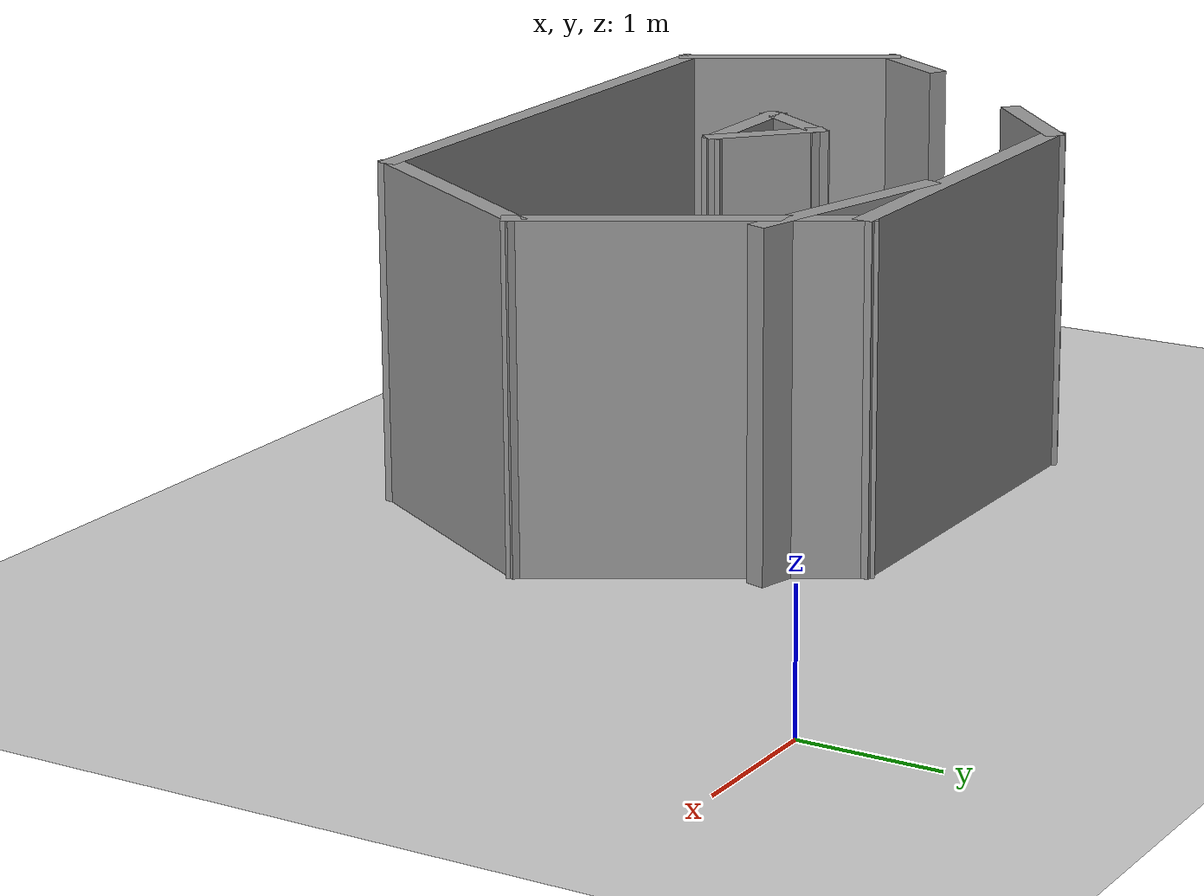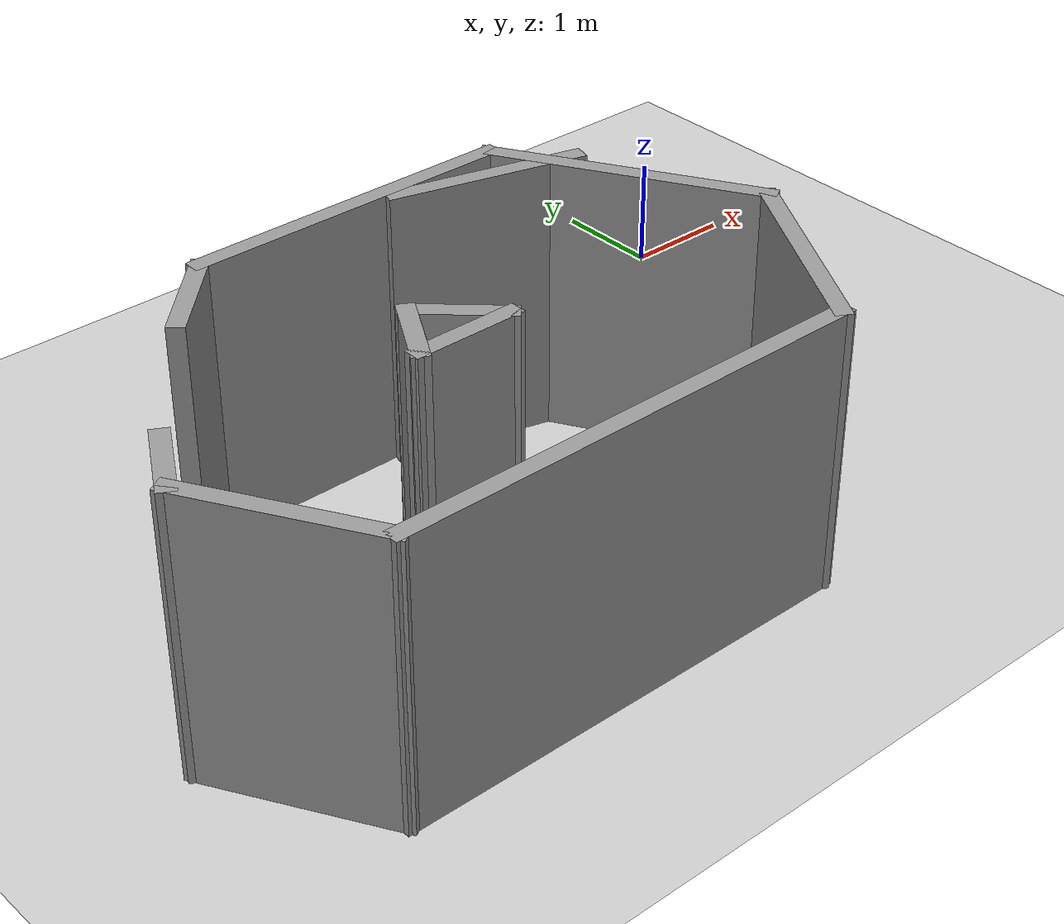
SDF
<sdf version="1.7">
 <world name="default">
  <light name="sun" type="directional">
   <pose>0 0 10 0 -0 0</pose>
   <diffuse>0.8 0.8 0.8 1</diffuse>
   <specular>0.2 0.2 0.2 1</specular>
   <attenuation>
    <range>1000</range>
    <constant>0.9</constant>
    <linear>0.01</linear>
    <quadratic>0.001</quadratic>
   </attenuation>
   <direction>-0.5 0.1 -0.9</direction>
   <spot><inner_angle>0</inner_angle><outer_angle>0</outer_angle><falloff>0</falloff></spot>
  </light>
  <model name="ground_plane">
   <static>1</static>
   <link name="link">
    <collision name="collision">
     <geometry><plane><normal>0 0 1</normal><size>100 100</size></plane></geometry>
     <surface>
      <contact><collide_bitmask>65535</collide_bitmask></contact>
      <friction><ode><mu>100</mu><mu2>50</mu2></ode></friction>
     </surface>
    </collision>
    <visual name="visual">
     <cast_shadows>0</cast_shadows>
     <geometry><plane><normal>0 0 1</normal><size>100 100</size></plane></geometry>
     <material>
      <script><uri>file://media/materials/scripts/gazebo.material</uri><name>Gazebo/Grey</name></script>
     </material>
    </visual>
   </link>
  </model>
  <gravity>0 0 -9.8</gravity>
  <magnetic_field>6e-06 2.3e-05 -4.2e-05</magnetic_field>
  <atmosphere type="adiabatic"/>
  <physics type="ode">
   <max_step_size>0.001</max_step_size>
   <real_time_factor>1</real_time_factor>
   <real_time_update_rate>1000</real_time_update_rate>
  </physics>
  <scene><ambient>0.4 0.4 0.4 1</ambient><background>0.7 0.7 0.7 1</background><shadows>1</shadows></scene>
  <spherical_coordinates>
   <surface_model>EARTH_WGS84</surface_model>
   <latitude_deg>0</latitude_deg>
   <longitude_deg>0</longitude_deg>
   <elevation>0</elevation>
   <heading_deg>0</heading_deg>
  </spherical_coordinates>
  <model name="ground_test">
   <pose>-3.79123 -2.38988 0 0 -0 0</pose>
   <link name="Wall_0">
    <collision name="Wall_0_Collision">
     <geometry><box><size>3 0.15 2.5</size></box></geometry>
     <pose>0 0 1.25 0 -0 0</pose>
    </collision>
    <visual name="Wall_0_Visual">
     <pose>0 0 1.25 0 -0 0</pose>
     <geometry><box><size>3 0.15 2.5</size></box></geometry>
     <material>
      <script><uri>file://media/materials/scripts/gazebo.material</uri><name>Gazebo/Grey</name></script>
      <ambient>1 1 1 1</ambient>
     </material>
     <meta><layer>0</layer></meta>
    </visual>
    <pose>-0.463774 1.34988 0 0 -0 0</pose>
   </link>
   <link name="Wall_1">
    <collision name="Wall_1_Collision">
     <geometry><box><size>2.5 0.15 2.5</size></box></geometry>
     <pose>0 0 1.25 0 -0 0</pose>
    </collision>
    <visual name="Wall_1_Visual">
     <pose>0 0 1.25 0 -0 0</pose>
     <geometry><box><size>2.5 0.15 2.5</size></box></geometry>
     <material>
      <script><uri>file://media/materials/scripts/gazebo.material</uri><name>Gazebo/Grey</name></script>
      <ambient>1 1 1 1</ambient>
     </material>
     <meta><layer>0</layer></meta>
    </visual>
    <pose>1.54873 0.332299 0 0 -0 -1.0472</pose>
   </link>
   <link name="Wall_10">
    <collision name="Wall_10_Collision">
     <geometry><box><size>1 0.15 2.5</size></box></geometry>
     <pose>0 0 1.25 0 -0 0</pose>
    </collision>
    <visual name="Wall_10_Visual">
     <pose>0 0 1.25 0 -0 0</pose>
     <geometry><box><size>1 0.15 2.5</size></box></geometry>
     <material>
      <script><uri>file://media/materials/scripts/gazebo.material</uri><name>Gazebo/Grey</name></script>
      <ambient>1 1 1 1</ambient>
     </material>
     <meta><layer>0</layer></meta>
    </visual>
    <pose>-1.01377 -0.709736 0 0 -0 0</pose>
   </link>
   <link name="Wall_11">
    <collision name="Wall_11_Collision">
     <geometry><box><size>0.906637 0.15 2.5</size></box></geometry>
     <pose>0 0 1.25 0 -0 0</pose>
    </collision>
    <visual name="Wall_11_Visual">
     <pose>0 0 1.25 0 -0 0</pose>
     <geometry><box><size>0.906637 0.15 2.5</size></box></geometry>
     <material>
      <script><uri>file://media/materials/scripts/gazebo.material</uri><name>Gazebo/Grey</name></script>
      <ambient>1 1 1 1</ambient>
     </material>
     <meta><layer>0</layer></meta>
    </visual>
    <pose>-0.863774 -0.449928 0 0 -0 2.38459</pose>
   </link>
   <link name="Wall_13">
    <collision name="Wall_13_Collision">
     <geometry><box><size>1.75 0.15 2.5</size></box></geometry>
     <pose>0 0 1.25 0 -0 0</pose>
    </collision>
    <visual name="Wall_13_Visual">
     <pose>0 0 1.25 0 -0 0</pose>
     <geometry><box><size>1.75 0.15 2.5</size></box></geometry>
     <material>
      <script><uri>file://media/materials/scripts/gazebo.material</uri><name>Gazebo/Grey</name></script>
      <ambient>1 1 1 1</ambient>
     </material>
     <meta><layer>0</layer></meta>
    </visual>
    <pose>0.673967 1.04282 0 0 -0 -0.261799</pose>
   </link>
   <link name="Wall_2">
    <collision name="Wall_2_Collision">
     <geometry><box><size>2 0.15 2.5</size></box></geometry>
     <pose>0 0 1.25 0 -0 0</pose>
    </collision>
    <visual name="Wall_2_Visual">
     <pose>0 0 1.25 0 -0 0</pose>
     <geometry><box><size>2 0.15 2.5</size></box></geometry>
     <material>
      <script><uri>file://media/materials/scripts/gazebo.material</uri><name>Gazebo/Grey</name></script>
      <ambient>1 1 1 1</ambient>
     </material>
     <meta><layer>0</layer></meta>
    </visual>
    <pose>1.67373 -1.48635 0 0 -0 -2.0944</pose>
   </link>
   <link name="Wall_3">
    <collision name="Wall_3_Collision">
     <geometry><box><size>4.25 0.15 2.5</size></box></geometry>
     <pose>0 0 1.25 0 -0 0</pose>
    </collision>
    <visual name="Wall_3_Visual">
     <pose>0 0 1.25 0 -0 0</pose>
     <geometry><box><size>4.25 0.15 2.5</size></box></geometry>
     <material>
      <script><uri>file://media/materials/scripts/gazebo.material</uri><name>Gazebo/Grey</name></script>
      <ambient>1 1 1 1</ambient>
     </material>
     <meta><layer>0</layer></meta>
    </visual>
    <pose>-0.838774 -2.28743 0 0 -0 3.14159</pose>
   </link>
   <link name="Wall_4">
    <collision name="Wall_4_Collision">
     <geometry><box><size>1.75 0.15 2.5</size></box></geometry>
     <pose>0 0 1.25 0 -0 0</pose>
    </collision>
    <visual name="Wall_4_Visual">
     <pose>0 0 1.25 0 -0 0</pose>
     <geometry><box><size>1.75 0.15 2.5</size></box></geometry>
     <material>
      <script><uri>file://media/materials/scripts/gazebo.material</uri><name>Gazebo/Grey</name></script>
      <ambient>1 1 1 1</ambient>
     </material>
     <meta><layer>0</layer></meta>
    </visual>
    <pose>-3.28877 -1.59461 0 0 -0 2.0944</pose>
   </link>
   <link name="Wall_5">
    <collision name="Wall_5_Collision">
     <geometry><box><size>0.75 0.15 2.5</size></box></geometry>
     <pose>0 0 1.25 0 -0 0</pose>
    </collision>
    <visual name="Wall_5_Visual">
     <pose>0 0 1.25 0 -0 0</pose>
     <geometry><box><size>0.75 0.15 2.5</size></box></geometry>
     <material>
      <script><uri>file://media/materials/scripts/gazebo.material</uri><name>Gazebo/Grey</name></script>
      <ambient>1 1 1 1</ambient>
     </material>
     <meta><layer>0</layer></meta>
    </visual>
    <pose>-3.53877 -0.641979 0 0 -0 1.0472</pose>
   </link>
   <link name="Wall_7">
    <collision name="Wall_7_Collision">
     <geometry><box><size>1 0.15 2.5</size></box></geometry>
     <pose>0 0 1.25 0 -0 0</pose>
    </collision>
    <visual name="Wall_7_Visual">
     <pose>0 0 1.25 0 -0 0</pose>
     <geometry><box><size>1 0.15 2.5</size></box></geometry>
     <material>
      <script><uri>file://media/materials/scripts/gazebo.material</uri><name>Gazebo/Grey</name></script>
      <ambient>1 1 1 1</ambient>
     </material>
     <meta><layer>0</layer></meta>
    </visual>
    <pose>-2.18929 1.04936 0 0 -0 -2.35619</pose>
   </link>
   <link name="Wall_9">
    <collision name="Wall_9_Collision">
     <geometry><box><size>0.75 0.15 2.5</size></box></geometry>
     <pose>0 0 1.25 0 -0 0</pose>
    </collision>
    <visual name="Wall_9_Visual">
     <pose>0 0 1.25 0 -0 0</pose>
     <geometry><box><size>0.75 0.15 2.5</size></box></geometry>
     <material>
      <script><uri>file://media/materials/scripts/gazebo.material</uri><name>Gazebo/Grey</name></script>
      <ambient>1 1 1 1</ambient>
     </material>
     <meta><layer>0</layer></meta>
    </visual>
    <pose>-1.28877 -0.449928 0 0 -0 -2.0944</pose>
   </link>
   <static>1</static>
  </model>
 </world>
</sdf>
